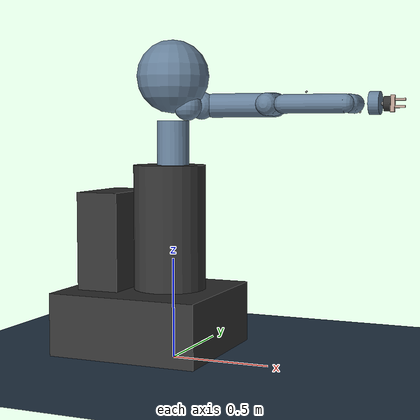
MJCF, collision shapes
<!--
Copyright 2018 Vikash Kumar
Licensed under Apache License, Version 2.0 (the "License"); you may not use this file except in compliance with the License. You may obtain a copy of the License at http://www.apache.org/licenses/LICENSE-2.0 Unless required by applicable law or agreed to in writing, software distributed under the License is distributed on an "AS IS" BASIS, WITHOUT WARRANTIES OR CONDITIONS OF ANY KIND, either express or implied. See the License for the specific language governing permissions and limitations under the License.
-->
<mujoco model='sawyer-v2.0'>
    <compiler meshdir=""/>

    <include file="../sawyer_sim/assets/sawyer_dependencies.xml"/>
    <include file="../sawyer_sim/assets/basic_scene.xml"/>
    <worldbody>
        <light mode='targetbodycom' target='torso' directional='false' diffuse='.8 .8 .8' specular='0.3 0.3 0.3' pos='0 0 4.0' dir='0 0 -1'/>
        <include file="../sawyer_sim/assets/sawyer_chain.xml"/> <!--gripper is attached & configured here -->
    </worldbody>

    <!-- Choose actuator options -->
    <include file="../sawyer_sim/assets/sawyer_joint_pos_act.xml"/>
    <include file="../sawyer_sim/assets/gripper_pos_act.xml"/>
</mujoco>

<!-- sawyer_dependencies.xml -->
<mujoco>
    <compiler angle="radian"/>
    <option iterations="50" integrator="Euler" timestep="0.002" cone="elliptic" />

    <asset>
        <mesh name="pedestal" file="../sawyer_sim/meshes/sawyer/pedestal.stl" />
        <mesh name="base" file="../sawyer_sim/meshes/sawyer/base.stl" />
        <mesh name="l0" file="../sawyer_sim/meshes/sawyer/l0.stl" />
        <mesh name="head" file="../sawyer_sim/meshes/sawyer/head.stl" />
        <mesh name="l1" file="../sawyer_sim/meshes/sawyer/l1.stl" />
        <mesh name="l2" file="../sawyer_sim/meshes/sawyer/l2.stl" />
        <mesh name="l3" file="../sawyer_sim/meshes/sawyer/l3.stl" />
        <mesh name="l4" file="../sawyer_sim/meshes/sawyer/l4.stl" />
        <mesh name="l5" file="../sawyer_sim/meshes/sawyer/l5.stl" />
        <mesh name="l6" file="../sawyer_sim/meshes/sawyer/l6.stl" />
    </asset>

    <contact>
        <exclude body1="right_arm_base_link" body2="right_l0"/>
    </contact>

    <default>
        <default class='sawyer'>
            <joint limited="true" damping="10" stiffness="0" armature=".1" user="0"/>
            <geom solref="0.008 1" solimp="0.95 0.95 0.01" margin="0.001" user="0" rgba="0.2 0.2 0.2 1" group="3"/>
            <motor ctrllimited="true" ctrlrange="-100 100"/>
            <position ctrllimited="true" forcelimited="true"/>

            <default class='sawyer_col'>
                <geom rgba=".4 .5 .6 1" group="4"/>
            </default>
            <default class='sawyer_viz'>
                <geom type="mesh" contype="0" conaffinity="0" group="1" rgba="0.5 0.1 0.1 1"/>
            </default>

            <default class='sawyer_gripper'>
                <joint damping="100" armature='5'/>
                <geom friction="1 0.5 0.001" rgba=".7 .6 .55 1" contype="2" conaffinity="2" condim="6" group="1"/>
                <position kp="500" forcerange="-70 70"/>
            </default>
        </default>
    </default>

</mujoco>

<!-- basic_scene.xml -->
<mujocoinclude>
    <asset>
        <texture name="texplane" type="2d" builtin="checker" rgb1=".2 .3 .4" rgb2=".1 0.15 0.2"
                width="512" height="512"/>
        <material name="MatGnd" reflectance="0.5" texture="texplane" texrepeat="1 1" texuniform="true"/>
    </asset>

    <worldbody>
        <light directional="false" diffuse=".8 .8 .8" specular="0.3 0.3 0.3" pos="1 -1 3" dir="-1 1 -3"/>
        <geom name="ground" pos="0 0 0" size="5 5 10" material="MatGnd" type="plane" contype="1" conaffinity="1"/>
    </worldbody>

</mujocoinclude>

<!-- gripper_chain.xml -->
<mujocoinclude>
    <body name="clawGripper" pos="0 0 .045" quat="-1 0 1 0">
        <geom  type="box" size="0.01 0.04 0.01" />
        <geom size="0.035 0.015" pos="-.024 0 0" type="cylinder" rgba="0.2 0.2 0.2 10" euler="0 1.57 0"/>

        <body name="rightclaw" pos=".01 .015 0" >
            <geom name="rightclaw_it" type="box" pos="0 0.0 0" size="0.05 0.005 0.005"/>
            <joint name="rc_close" type="slide" pos="0 0 0" axis="0 -1 0" range="0 .015" user="008" limited="true"/>
        </body>

        <body name="leftclaw" pos=".01 .02 0">
            <geom name="leftclaw_it0" type="box" pos="0 -.04 0" size="0.05 0.005 0.005"/>
            <joint name="lc_close" type="slide" pos="0 0 0" axis="0 1 0" range="0 .015" user="008" limited="true"/>
        </body>
    </body>
</mujocoinclude>

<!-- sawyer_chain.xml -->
<mujocoinclude>
    <camera pos="0 0 3.2" name="topview" />

    <body name="base" pos="0 0 .95" childclass='sawyer'>
        <site name="basesite" pos="0 0 0" size="0.01" />
        <inertial pos="0 0 0" mass="0" diaginertia="0 0 0" />
        <body name="controller_box" pos="0 0 0">
            <inertial pos="-0.325 0 -0.38" mass="46.64" diaginertia="1.71363 1.27988 0.809981" />
            <geom size="0.11 0.2 0.265" pos="-0.325 0 -0.38" type="box" />
        </body>
        <body name="pedestal_feet" pos="0 0 0">
            <inertial pos="-0.1225 0 -0.758" mass="167.09" diaginertia="8.16095 9.59375 15.0785" />
            <geom size="0.385 0.35 0.155" pos="-0.1225 0 -0.758" type="box"  contype="0" conaffinity="0" />
        </body>
        <body name="torso" pos="0 0 0">
            <inertial pos="0 0 0" mass="0.0001" diaginertia="1e-08 1e-08 1e-08" />
            <geom size="0.05 0.05 0.05" type="box" contype="0" conaffinity="0" group="1"  />
        </body>
        <body name="pedestal" pos="0 0 0">
            <inertial pos="0 0 0" quat="0.659267 -0.259505 -0.260945 0.655692" mass="60.864" diaginertia="6.0869 5.81635 4.20915" />
            <geom pos="0.26 0.345 -0.91488" quat="0.5 0.5 -0.5 -0.5" type="mesh" contype="0" conaffinity="0" group="1"  mesh="pedestal" />
            <geom size="0.18 0.31" pos="-0.02 0 -0.29" type="cylinder" rgba="0.2 0.2 0.2 0" />
        </body>
        <body name="right_arm_base_link" pos="0 0 0">
            <inertial pos="-0.0006241 -2.8025e-05 0.065404" quat="-0.209285 0.674441 0.227335 0.670558" mass="2.0687" diaginertia="0.00740351 0.00681776 0.00672942" />
            <geom name='right_arm_base_link0' class="sawyer_viz" mesh="base" />
            <geom name='right_arm_base_link1' size="0.08 0.12" pos="0 0 0.12" type="cylinder" class="sawyer_col" />
            <body name="right_l0" pos="0 0 0.08">
                <inertial pos="0.024366 0.010969 0.14363" quat="0.894823 0.00899958 -0.170275 0.412573" mass="5.3213" diaginertia="0.0651588 0.0510944 0.0186218" />
                <joint name="right_j0" pos="0 0 0" axis="0 0 1" range="-3.0503 3.0503" damping="50"/>
                <geom name='right_l0_g0' class="sawyer_viz" mesh="l0" />
                <geom name='right_l0_g1' size="0.07" pos="0.08 0 0.23" class="sawyer_col" />
                <body name="head" pos="0 0 0.2965">
                    <inertial pos="0.0053207 -2.6549e-05 0.1021" quat="0.999993 7.08405e-05 -0.00359857 -0.000626247" mass="1.5795" diaginertia="0.0118334 0.00827089 0.00496574" />
                    <geom name='head_g0' class="sawyer_viz" mesh="head" />
                    <geom name='head_g1' size="0.18" pos="0 0 0.08" class="sawyer_col" />
                    <body name="screen" pos="0.03 0 0.105" quat="0.5 0.5 0.5 0.5">
                        <geom size="0.12 0.07 0.001" type="box" group="1"/>
                    </body>
                    <site name="head_camera" size="0.01" pos="0.0228027 0 0.216572" quat="0.342813 -0.618449 0.618449 -0.342813"/>
                </body>
                <site name="right_torso_itb" pos="-0.055 0 0.22" quat="0.707107 0 -0.707107 0"/>
                <body name="right_l1" pos="0.081 0.05 0.237" quat="0.5 -0.5 0.5 0.5">
                    <inertial pos="-0.0030849 -0.026811 0.092521" quat="0.424888 0.891987 0.132364 -0.0794296" mass="4.505" diaginertia="0.0224339 0.0221624 0.0097097" />
                    <joint name="right_j1" pos="0 0 0" axis="0 0 1" range="-3.8 1.25" damping="50"/>
                    <geom class="sawyer_viz" mesh="l1" />
                    <geom size="0.07" pos="0 0 0.1225" class="sawyer_col" />
                    <body name="right_l2" pos="0 -0.14 0.1425" quat="0.707107 0.707107 0 0">
                        <inertial pos="-0.00016044 -0.014967 0.13582" quat="0.707831 -0.0524761 0.0516007 0.702537" mass="1.745" diaginertia="0.0257928 0.025506 0.00292515" />
                        <joint name="right_j2" pos="0 0 0" axis="0 0 1" range="-3.0426 3.0426" damping="25"/>
                        <geom class="sawyer_viz" mesh="l2" />
                        <geom size="0.06 0.17" pos="0 0 0.08" type="capsule" class="sawyer_col" />
                        <body name="right_l3" pos="0 -0.042 0.26" quat="0.707107 -0.707107 0 0">
                            <site name="armsite" pos="0 0 0" size="0.01" />
                            <inertial pos="-0.0048135 -0.0281 -0.084154" quat="0.902999 0.385391 -0.0880901 0.168247" mass="2.5097" diaginertia="0.0102404 0.0096997 0.00369622" />
                            <joint name="right_j3" pos="0 0 0" axis="0 0 1" range="-3.0439 3.0439" damping="25"/>
                            <geom class="sawyer_viz" mesh="l3" />
                            <geom type="capsule" size="0.055 0.06" pos="0 0 -0.06" class="sawyer_col" />
                            <body name="right_l4" pos="0 -0.125 -0.1265" quat="0.707107 0.707107 0 0">
                                <joint name="right_j4" pos="0 0 0" axis="0 0 1" range="-2.9761 2.9761" />
                                <geom class="sawyer_viz" mesh="l4" />
                                <geom size="0.045 0.15" pos="0 0 0.11" type="capsule" class="sawyer_col" />
                                <site name="right_arm_itb" pos="-0.055 0 0.075" quat="0.707107 0 -0.707107 0"/>
                                <body name="right_l5" pos="0 0.031 0.275" quat="0.707107 -0.707107 0 0">
                                    <joint name="right_j5" pos="0 0 0" axis="0 0 1" range="-2.9761 2.9761"/>
                                    <geom class="sawyer_viz" mesh="l5" />
                                    <geom type="capsule" size="0.045 0.05" pos="0 0 0.05" class="sawyer_col" />
                                    <site name="right_hand_camera" pos="0.039552 -0.033 0.0695" quat="0.707107 0 0.707107 0"/>
                                    <site name="right_wrist" pos="0 0 0.10541" quat="0.707107 0.707107 0 0"/>
                                    <body name="right_l6" pos="0 -0.11 0.1053" quat="0.0616248 0.06163 -0.704416 0.704416">
                                        <joint name="right_j6" pos="0 0 0" axis="0 0 1" range="-4.7124 4.7124"/>
                                        <geom class="sawyer_viz" mesh="l6"/>
                                        <geom size="0.055 0.025" pos="0 0.015 -0.01" type="cylinder" class="sawyer_col" />
                                        <body name="right_ee_attchment" pos="0 0 0.0245" quat="0.707107 0 0 0.707107" childclass="sawyer_gripper">
                                            <site name="endeffector0" pos="0 0 0" size="0.01" />

<!--  ================= BEGIN GRIPPER ================= /-->
<include file="../sawyer_sim/assets/gripper_chain.xml"/>
<!--  ================= END GRIPPER ================= /-->

                                        </body>
                                    </body>
                                </body>
                            </body>
                        </body>
                    </body>
                </body>
            </body>
        </body>
    </body>

</mujocoinclude>

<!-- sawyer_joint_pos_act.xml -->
<mujocoinclude>
    <actuator>
        <position joint="right_j0" ctrlrange="-3.04 3.04" forcerange="-100 100" kp="500" class='sawyer'/>
        <position joint="right_j1" ctrlrange="-3.80 3.80" forcerange="-100 100" kp="500" class='sawyer'/>
        <position joint="right_j2" ctrlrange="-3.04 3.04" forcerange="-75 75" kp="200" class='sawyer'/>
        <position joint="right_j3" ctrlrange="-3.04 3.04" forcerange="-75 75" kp="200" class='sawyer'/>
        <position joint="right_j4" ctrlrange="-2.98 2.98" forcerange="-50 50" kp="50" class='sawyer'/>
        <position joint="right_j5" ctrlrange="-2.98 2.98" forcerange="-50 50" kp="50" class='sawyer'/>
        <position joint="right_j6" ctrlrange="-4.71 4.71" forcerange="-50 50" kp="50" class='sawyer'/>
    </actuator>

</mujocoinclude>

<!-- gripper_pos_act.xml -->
<mujocoinclude>
    <actuator>
        <position joint="rc_close" ctrlrange="0 0.015" class='sawyer_gripper'/>
        <position joint="lc_close" ctrlrange="0 0.015" class='sawyer_gripper'/>
    </actuator>

</mujocoinclude>
